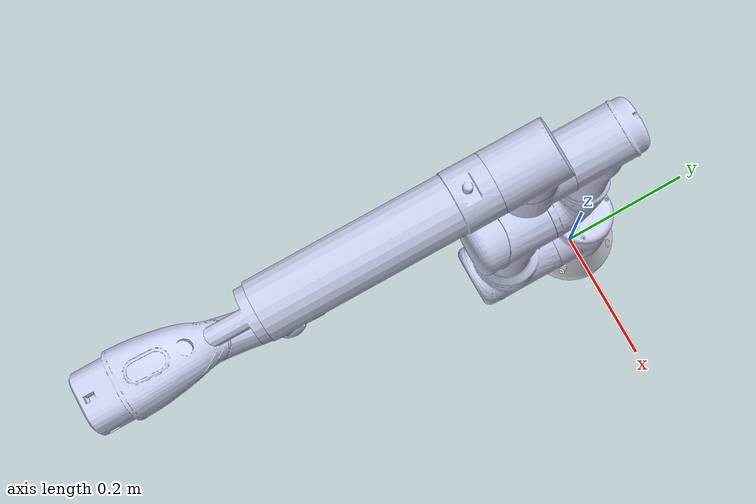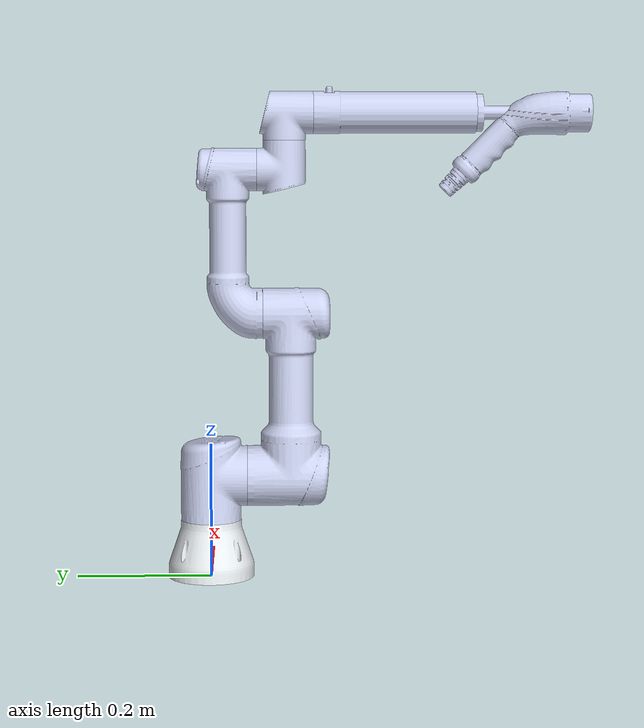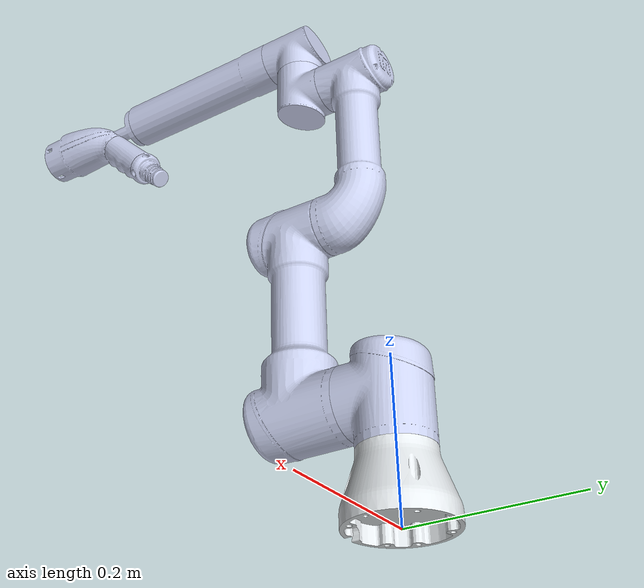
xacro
<?xml version="1.0" ?>
<robot name="charging_robot" xmlns:xacro="http://ros.org/wiki/xacro">

# Add this before base link
<link name="dummy_link"></link>

  <link
    name="base_link">
    <inertial>
      <origin
        xyz="1.31299409505858E-05 -0.000182000210163107 0.0465570196245818"
        rpy="0 0 0" />
      <mass
        value="61.0676487684592" /> #TODO
      <inertia
        ixx="0.000760494487568691"
        ixy="7.86857711947688E-08"
        ixz="3.40719385268755E-07"
        iyy="0.00077439103050546"
        iyz="-3.4527228052956E-06"
        izz="0.00100204247644816" />
    </inertial>
    <visual>
      <origin
        xyz="0 0 0"
        rpy="0 0 0" />
      <geometry>
        <mesh
          filename="package://charging_robot/meshes/base_link.STL" />
      </geometry>
      <material
        name="">
        <color
          rgba="0.898039215686275 0.917647058823529 0.929411764705882 1" />
      </material>
    </visual>
    <collision>
      <origin
        xyz="0 0 0"
        rpy="0 0 0" />
      <geometry>
        <mesh
          filename="package://charging_robot/meshes/base_link.STL" />
      </geometry>
    </collision>
  </link>

# Add this after base link
<joint name="dummy_joint" type="fixed">
    <origin rpy="0 0 0" xyz="0 0 0" />
    <parent link="dummy_link"/>
    <child link="base_link"/>
</joint>

  <link
    name="Link1">
    <inertial>
      <origin
        xyz="-8.52918422456146E-06 -0.00732754811458532 0.140273364138987"
        rpy="0 0 0" />
      <mass
        value="2.0" />
      <inertia
        ixx="0.00120409888419921"
        ixy="-1.39536489001303E-07"
        ixz="4.27140501519446E-08"
        iyy="0.00111869817012112"
        iyz="0.000101273303403283"
        izz="0.000911594560955689" />
    </inertial>
    <visual>
      <origin
        xyz="0 0 0"
        rpy="0 0 0" />
      <geometry>
        <mesh
          filename="package://charging_robot/meshes/Link1.STL" />
      </geometry>
      <material
        name="">
        <color
          rgba="0.792156862745098 0.819607843137255 0.933333333333333 1" />
      </material>
    </visual>
    <collision>
      <origin
        xyz="0 0 0"
        rpy="0 0 0" />
      <geometry>
        <mesh
          filename="package://charging_robot/meshes/Link1.STL" />
      </geometry>
    </collision>
  </link>
  <joint
    name="Joint1"
    type="revolute">
    <origin
      xyz="0 0 0"
      rpy="0 0 0" />
    <parent
      link="base_link" />
    <child
      link="Link1" />
    <axis
      xyz="0 0 -1" />
    <limit
      lower="-3.14"
      upper="3.14"
      effort="0"
      velocity="0" />
  </joint>
  <link
    name="Link2">
    <inertial>
      <origin
        xyz="-6.02324243761885E-07 -0.105849206823547 -0.116558379432424"
        rpy="0 0 0" />
      <mass
        value="3.42" />
      <inertia
        ixx="0.019297803356077"
        ixy="-1.47617988019155E-07"
        ixz="7.37970525209698E-08"
        iyy="0.00210354731087032"
        iyz="-0.00135595921273946"
        izz="0.0187229765717406" />
    </inertial>
    <visual>
      <origin
        xyz="0 0 0"
        rpy="0 0 0" />
      <geometry>
        <mesh
          filename="package://charging_robot/meshes/Link2.STL" />
      </geometry>
      <material
        name="">
        <color
          rgba="0.792156862745098 0.819607843137255 0.933333333333333 1" />
      </material>
    </visual>
    <collision>
      <origin
        xyz="0 0 0"
        rpy="0 0 0" />
      <geometry>
        <mesh
          filename="package://charging_robot/meshes/Link2.STL" />
      </geometry>
    </collision>
  </link>
  <joint
    name="Joint2"
    type="revolute">
    <origin
      xyz="0 0 0.1519"
      rpy="-1.5708 0 0" />
    <parent
      link="Link1" />
    <child
      link="Link2" />
    <axis
      xyz="0 0 1" />
    <limit
      lower="-3.14"
      upper="3.14"
      effort="0"
      velocity="0" />
  </joint>
  <link
    name="Link3">
    <inertial>
      <origin
        xyz="-0.110432448507224 -8.85332115077113E-08 -0.0322852440938127"
        rpy="0 0 0" />
      <mass
        value="1.26" />
      <inertia
        ixx="0.000638857905152697"
        ixy="4.44620386081057E-08"
        ixz="0.00056680409821328"
        iyy="0.00701668679175095"
        iyz="-3.10409752224366E-10"
        izz="0.00683638640718249" />
    </inertial>
    <visual>
      <origin
        xyz="0 0 0"
        rpy="0 0 0" />
      <geometry>
        <mesh
          filename="package://charging_robot/meshes/Link3.STL" />
      </geometry>
      <material
        name="">
        <color
          rgba="0.792156862745098 0.819607843137255 0.933333333333333 1" />
      </material>
    </visual>
    <collision>
      <origin
        xyz="0 0 0"
        rpy="0 0 0" />
      <geometry>
        <mesh
          filename="package://charging_robot/meshes/Link3.STL" />
      </geometry>
    </collision>
  </link>
  <joint
    name="Joint3"
    type="revolute">
    <origin
      xyz="0 -0.24365 0"
      rpy="0 0 1.5708" />
    <parent
      link="Link2" />
    <child
      link="Link3" />
    <axis
      xyz="0 0 1" />
    <limit
      lower="-3.14"
      upper="3.14"
      effort="0"
      velocity="0" />
  </joint>
  <link
    name="Link4">
    <inertial>
      <origin
        xyz="-0.00525801580491903 -2.19075026869815E-07 -0.10258442743142"
        rpy="0 0 0" />
      <mass
        value="0.8" />
      <inertia
        ixx="0.000178924033269713"
        ixy="6.66496087009546E-10"
        ixz="-1.68870620715207E-05"
        iyy="0.000215917794765493"
        iyz="-8.81135271781819E-10"
        izz="0.000181683883551313" />
    </inertial>
    <visual>
      <origin
        xyz="0 0 0"
        rpy="0 0 0" />
      <geometry>
        <mesh
          filename="package://charging_robot/meshes/Link4.STL" />
      </geometry>
      <material
        name="">
        <color
          rgba="0.792156862745098 0.819607843137255 0.933333333333333 1" />
      </material>
    </visual>
    <collision>
      <origin
        xyz="0 0 0"
        rpy="0 0 0" />
      <geometry>
        <mesh
          filename="package://charging_robot/meshes/Link4.STL" />
      </geometry>
    </collision>
  </link>
  <joint
    name="Joint4"
    type="revolute">
    <origin
      xyz="-0.21325 0 0"
      rpy="0 0 0" />
    <parent
      link="Link3" />
    <child
      link="Link4" />
    <axis
      xyz="0 0 1" />
    <limit
      lower="-3.14"
      upper="3.14"
      effort="0"
      velocity="0" />
  </joint>
  <link
    name="Link5">
    <inertial>
      <origin
        xyz="-2.57315410612128E-07 -0.00322161846109309 0.0756707712226177"
        rpy="0 0 0" />
      <mass
        value="0.8" />
      <inertia
        ixx="0.00021591792388467"
        ixy="7.65171892824432E-10"
        ixz="8.23290393884545E-10"
        iyy="0.00017892418948679"
        iyz="1.68871139435162E-05"
        izz="0.000181684105968982" />
    </inertial>
    <visual>
      <origin
        xyz="0 0 0"
        rpy="0 0 0" />
      <geometry>
        <mesh
          filename="package://charging_robot/meshes/Link5.STL" />
      </geometry>
      <material
        name="">
        <color
          rgba="0.792156862745098 0.819607843137255 0.933333333333333 1" />
      </material>
    </visual>
    <collision>
      <origin
        xyz="0 0 0"
        rpy="0 0 0" />
      <geometry>
        <mesh
          filename="package://charging_robot/meshes/Link5.STL" />
      </geometry>
    </collision>
  </link>
  <joint
    name="Joint5"
    type="revolute">
    <origin
      xyz="0 0 -0.11235"
      rpy="1.5708 0 -1.5708" />
    <parent
      link="Link4" />
    <child
      link="Link5" />
    <axis
      xyz="0 0 1" />
    <limit
      lower="-3.14"
      upper="3.14"
      effort="0"
      velocity="0" />
  </joint>
  <link
    name="Link6">
    <inertial>
      <origin
        xyz="6.47460900316116E-11 0.00227378816956325 -0.158312281931674"
        rpy="0 0 0" />
      <mass
        value="0.35" />
      <inertia
        ixx="0.00333846848595568"
        ixy="1.88415933556498E-12"
        ixz="-7.36290023764471E-12"
        iyy="0.00333887923474237"
        iyz="-5.32112866368567E-07"
        izz="0.00032876963440072" />
    </inertial>
    <visual>
      <origin
        xyz="0 0 0"
        rpy="0 0 0" />
      <geometry>
        <mesh
          filename="package://charging_robot/meshes/Link6.STL" />
      </geometry>
      <material
        name="">
        <color
          rgba="0.792156862745098 0.819607843137255 0.933333333333333 1" />
      </material>
    </visual>
    <collision>
      <origin
        xyz="0 0 0"
        rpy="0 0 0" />
      <geometry>
        <mesh
          filename="package://charging_robot/meshes/Link6.STL" />
      </geometry>
    </collision>
  </link>
  <joint
    name="Joint6"
    type="revolute">
    <origin
      xyz="0 0 0.08535"
      rpy="-1.5708 0 0" />
    <parent
      link="Link5" />
    <child
      link="Link6" />
    <axis
      xyz="0 0 1" />
    <limit
      lower="-3.14"
      upper="3.14"
      effort="0"
      velocity="0" />
  </joint>
  <link
    name="Link7">
    <inertial>
      <origin
        xyz="5.04031519052025E-19 0.00200469981059381 -0.180016955023381"
        rpy="0 0 0" />
      <mass
        value="0.0908764844935512" />
      <inertia
        ixx="0.000450562904874952"
        ixy="1.71281909805966E-20"
        ixz="2.77793826384743E-18"
        iyy="0.0004503722428556"
        iyz="9.96040593377829E-07"
        izz="1.26158531179263E-05" />
    </inertial>
    <visual>
      <origin
        xyz="0 0 0"
        rpy="0 0 0" />
      <geometry>
        <mesh
          filename="package://charging_robot/meshes/Link7.STL" />
      </geometry>
      <material
        name="">
        <color
          rgba="0.792156862745098 0.819607843137255 0.933333333333333 1" />
      </material>
    </visual>
    <collision>
      <origin
        xyz="0 0 0"
        rpy="0 0 0" />
      <geometry>
        <mesh
          filename="package://charging_robot/meshes/Link7.STL" />
      </geometry>
    </collision>
  </link>
  <joint
    name="Joint7"
    type="prismatic">
    <origin
      xyz="0 0 -0.0549"
      rpy="0 0 0" />
    <parent
      link="Link6" />
    <child
      link="Link7" />
    <axis
      xyz="0 0 1" />
    <limit
      lower="0"
      upper="0.3"
      effort="0"
      velocity="0" />
  </joint>
  <link
    name="Charger_Link">
    <inertial>
      <origin
        xyz="-1.60828545119071E-05 0.0233408904927891 -0.0657651079758858"
        rpy="0 0 0" />
      <mass
        value="0.449460569532232" />
      <inertia
        ixx="0.00185160492644654"
        ixy="5.78351491181251E-07"
        ixz="8.73825554656471E-07"
        iyy="0.00141795601961042"
        iyz="-0.000685950601972587"
        izz="0.000615251613020217" />
    </inertial>
    <visual>
      <origin
        xyz="0 0 0"
        rpy="0 0 0" />
      <geometry>
        <mesh
          filename="package://charging_robot/meshes/Charger_Link.STL" />
      </geometry>
      <material
        name="">
        <color
          rgba="0.792156862745098 0.819607843137255 0.933333333333333 1" />
      </material>
    </visual>
    <collision>
      <origin
        xyz="0 0 0"
        rpy="0 0 0" />
      <geometry>
        <mesh
          filename="package://charging_robot/meshes/Charger_Link.STL" />
      </geometry>
    </collision>
  </link>
  <joint
    name="Charger_nojoint"
    type="fixed">
    <origin
      xyz="0 0 -0.2352"
      rpy="0 0 0" />
    <parent
      link="Link7" />
    <child
      link="Charger_Link" />
    <axis
      xyz="0 0 0" />
  </joint>

<!-- Controllers -->

 <ros2_control name="GazeboSystem" type="system">
 <hardware>
     <plugin>gazebo_ros2_control/GazeboSystem</plugin>
 </hardware>

 # Velocity and Position Controllers

<joint name="Joint1">
    <command_interface name="position">
         <param name="min">-1.5707</param>
         <param name="max">1.5707</param>
     </command_interface>
     <state_interface name="position"/>
     <state_interface name="velocity"/>
  </joint>
     <joint name="Joint1">
    <command_interface name="velocity">
         <param name="min">-1000</param>
          <param name="max">1000</param>
     </command_interface>
     <state_interface name="position"/>
     <state_interface name="velocity"/>
  </joint>
  <joint name="Joint2">
    <command_interface name="position">
         <param name="min">-1.5707</param>
         <param name="max">1.5707</param>
     </command_interface>
     <state_interface name="position"/>
     <state_interface name="velocity"/>
  </joint>
     <joint name="Joint2">
    <command_interface name="velocity">
         <param name="min">-1000</param>
          <param name="max">1000</param>
     </command_interface>
     <state_interface name="position"/>
     <state_interface name="velocity"/>
  </joint>
  <joint name="Joint3">
    <command_interface name="position">
         <param name="min">-1.5707</param>
         <param name="max">1.5707</param>
     </command_interface>
     <state_interface name="position"/>
     <state_interface name="velocity"/>
  </joint>
     <joint name="Joint3">
    <command_interface name="velocity">
         <param name="min">-1000</param>
          <param name="max">1000</param>
     </command_interface>
     <state_interface name="position"/>
     <state_interface name="velocity"/>
  </joint>
  <joint name="Joint4">
    <command_interface name="position">
        <param name="min">-1.5707</param>
         <param name="max">1.5707</param>
    </command_interface>
    <state_interface name="position"/>
    <state_interface name="velocity"/>
  </joint>
     <joint name="Joint4">
    <command_interface name="velocity">
         <param name="min">-1000</param>
          <param name="max">1000</param>
     </command_interface>
     <state_interface name="position"/>
     <state_interface name="velocity"/>
  </joint>
  <joint name="Joint5">
    <command_interface name="position">
         <param name="min">-1.5707</param>
         <param name="max">1.5707</param>
     </command_interface>
     <state_interface name="position"/>
     <state_interface name="velocity"/>
  </joint>
     <joint name="Joint5">
    <command_interface name="velocity">
         <param name="min">-1000</param>
          <param name="max">1000</param>
     </command_interface>
     <state_interface name="position"/>
     <state_interface name="velocity"/>
  </joint>
  <joint name="Joint6">
    <command_interface name="position">
         <param name="min">-1.5707</param>
         <param name="max">1.5707</param>
     </command_interface>
     <state_interface name="position"/>
     <state_interface name="velocity"/>
  </joint>
   <joint name="Joint6">
    <command_interface name="velocity">
         <param name="min">-1000</param>
          <param name="max">1000</param>
     </command_interface>
     <state_interface name="position"/>
     <state_interface name="velocity"/>
  </joint>
  <joint name="Joint7">
    <command_interface name="position">
         <param name="min">-1.5707</param>
         <param name="max">1.5707</param>
     </command_interface>
     <state_interface name="position"/>
     <state_interface name="velocity"/>
  </joint>
      <joint name="Joint7">
      <command_interface name="velocity">
          <param name="min">-1000</param>
            <param name="max">1000</param>
      </command_interface>
      <state_interface name="position"/>
      <state_interface name="velocity"/>
  </joint>

 </ros2_control>

<!-- Gazebo Plugin -->
<gazebo>
    <plugin filename="libgazebo_ros2_control.so" name="gazebo_ros2_control">
        <parameters>$(find charging_robot)/config/control.yaml</parameters>
    </plugin>
</gazebo>

</robot>
